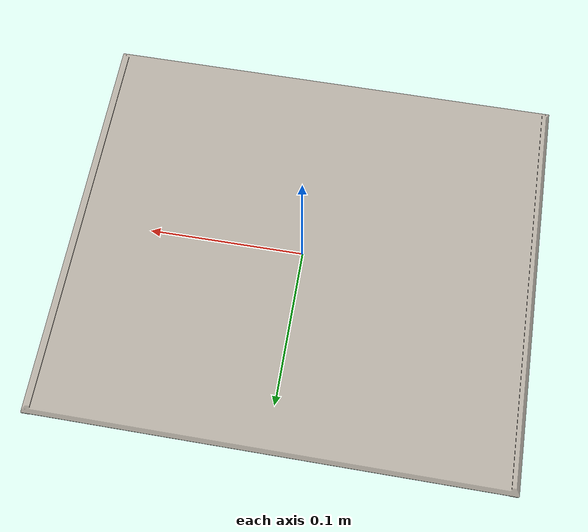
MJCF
<mujoco model="hot_plate">
  <default>
    <default class="visual">
      <!-- visual meshes don't collide -->
      <geom type="mesh" group="2" contype="0" conaffinity="0"/>
    </default>
    <default class="collision">
      <!-- collisions use a box + friction -->
      <geom type="box" group="3" friction="1.0 0.02 0.001"/>
    </default>
  </default>

  <asset>
    <texture  name="hot_plate" type="2d" file="hot_plate.png"/>
    <material name="material_0" texture="hot_plate" specular="0.0" shininess="0.5"/>
    <!-- scale shrinks the OBJ (e.g., from ~meters to 0.30m-wide if that matched your earlier calc) -->
    <mesh name="hot_plate" file="hot_plate.obj" scale="0.005 0.005 0.005"/>
  </asset>

  <worldbody>
    <!-- FIXED: no joint on this body -->
    <body name="hot_plate" pos="0 0 0">
      <!-- textured visual -->
      <geom class="visual" material="material_0" mesh="hot_plate"/>
      <!-- single box collider (half-extents) -->
      <geom class="collision" type="box" size="0.150 0.130 0.0025" pos="0 0 0.001943"/>
    </body>
  </worldbody>
</mujoco>
